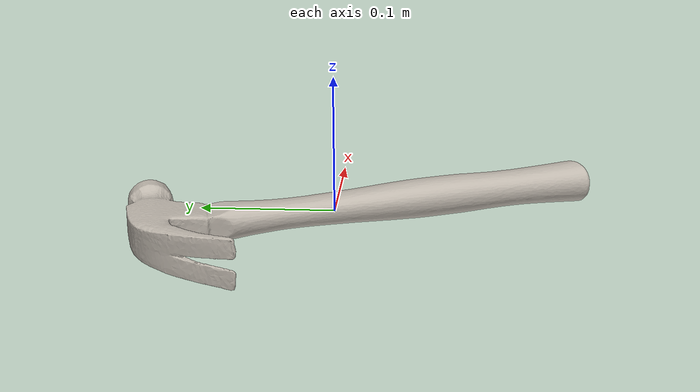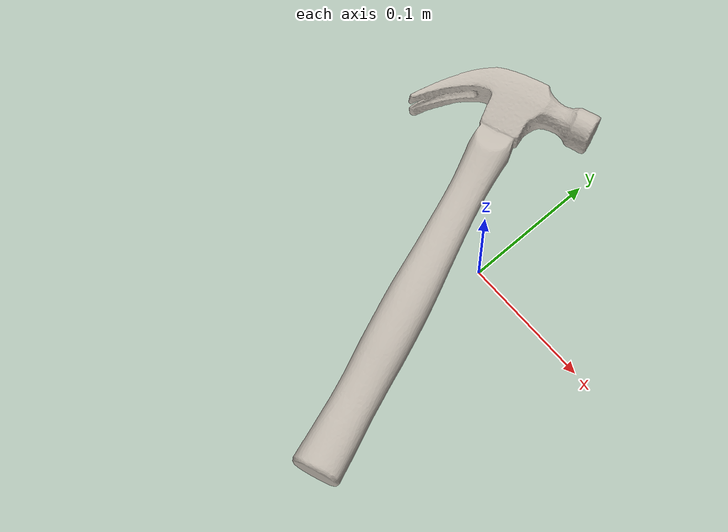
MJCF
<mujoco model="hammer">
  <compiler angle="radian" meshdir="assets" texturedir="assets"/>
    <default>
        <default class="ycb_col">
            <geom contype="1" conaffinity="1" group="3" rgba=".4 .5 .6 1"/>
        </default>
        <default class="ycb_viz">
            <geom contype="0" conaffinity="0" type="mesh" mass="0"/>
        </default>
    </default>
  <asset>
    <texture type="2d" name="hammer_tex" file="texture_map.png"/>
    <material name="hammer_mat" texture="hammer_tex" specular="0.5" shininess="0.5"/>
    <mesh file="textured.obj" name="hammer"/>
    <mesh file="textured_collision_0.obj" name="hammer_collision_0"/>
    <mesh file="textured_collision_1.obj" name="hammer_collision_1"/>
    <mesh file="textured_collision_2.obj" name="hammer_collision_2"/>
    <mesh file="textured_collision_3.obj" name="hammer_collision_3"/>
    <mesh file="textured_collision_4.obj" name="hammer_collision_4"/>
    <mesh file="textured_collision_5.obj" name="hammer_collision_5"/>
    <mesh file="textured_collision_6.obj" name="hammer_collision_6"/>
    <mesh file="textured_collision_7.obj" name="hammer_collision_7"/>
    <mesh file="textured_collision_8.obj" name="hammer_collision_8"/>
  </asset>
  <worldbody>
      <geom material="hammer_mat" mesh="hammer" class="ycb_viz"/>
      <geom mesh="hammer_collision_0" class="ycb_col" conaffinity="1" condim="4" friction="0.1 0.1 0.1" mass="0.11060843750172736" rgba="1 1 1 1" solimp="0.99 0.99 0.01" solref=".001 0.1" type="mesh" group="3"/>
      <geom mesh="hammer_collision_1" class="ycb_col" conaffinity="1" condim="4" friction="0.1 0.1 0.1" mass="0.3094783644055673" rgba="1 1 1 1" solimp="0.99 0.99 0.01" solref=".001 0.1" type="mesh" group="3"/>
      <geom mesh="hammer_collision_2" class="ycb_col" conaffinity="1" condim="4" friction="0.1 0.1 0.1" mass="0.035814741793345914" rgba="1 1 1 1" solimp="0.99 0.99 0.01" solref=".001 0.1" type="mesh" group="3"/>
      <geom mesh="hammer_collision_3" class="ycb_col" conaffinity="1" condim="4" friction="0.1 0.1 0.1" mass="0.011545735984503314" rgba="1 1 1 1" solimp="0.99 0.99 0.01" solref=".001 0.1" type="mesh" group="3"/>
      <geom mesh="hammer_collision_4" class="ycb_col" conaffinity="1" condim="4" friction="0.1 0.1 0.1" mass="0.0111723584335659" rgba="1 1 1 1" solimp="0.99 0.99 0.01" solref=".001 0.1" type="mesh" group="3"/>
      <geom mesh="hammer_collision_5" class="ycb_col" conaffinity="1" condim="4" friction="0.1 0.1 0.1" mass="0.04847150934600305" rgba="1 1 1 1" solimp="0.99 0.99 0.01" solref=".001 0.1" type="mesh" group="3"/>
      <geom mesh="hammer_collision_6" class="ycb_col" conaffinity="1" condim="4" friction="0.1 0.1 0.1" mass="0.047945616337306665" rgba="1 1 1 1" solimp="0.99 0.99 0.01" solref=".001 0.1" type="mesh" group="3"/>
      <geom mesh="hammer_collision_7" class="ycb_col" conaffinity="1" condim="4" friction="0.1 0.1 0.1" mass="0.0684807039469665" rgba="1 1 1 1" solimp="0.99 0.99 0.01" solref=".001 0.1" type="mesh" group="3"/>
      <geom mesh="hammer_collision_8" class="ycb_col" conaffinity="1" condim="4" friction="0.1 0.1 0.1" mass="0.044482532251014104" rgba="1 1 1 1" solimp="0.99 0.99 0.01" solref=".001 0.1" type="mesh" group="3"/>
  </worldbody>
</mujoco>
